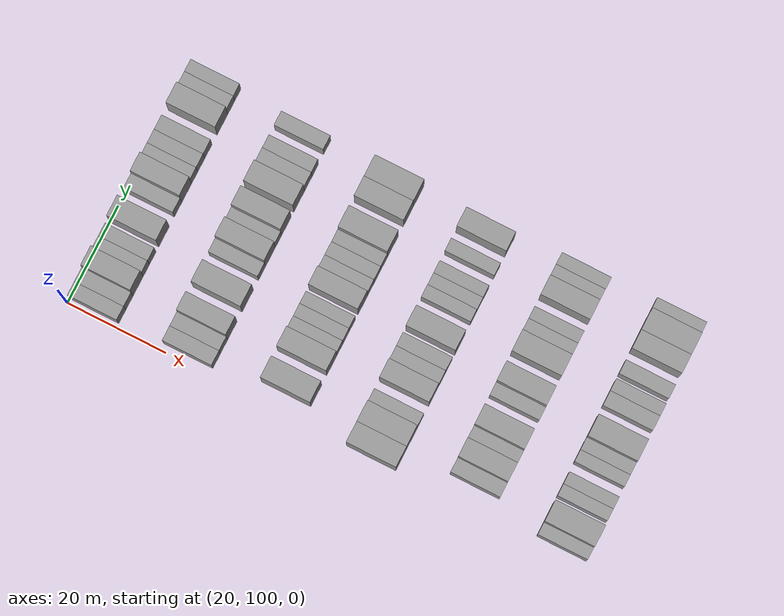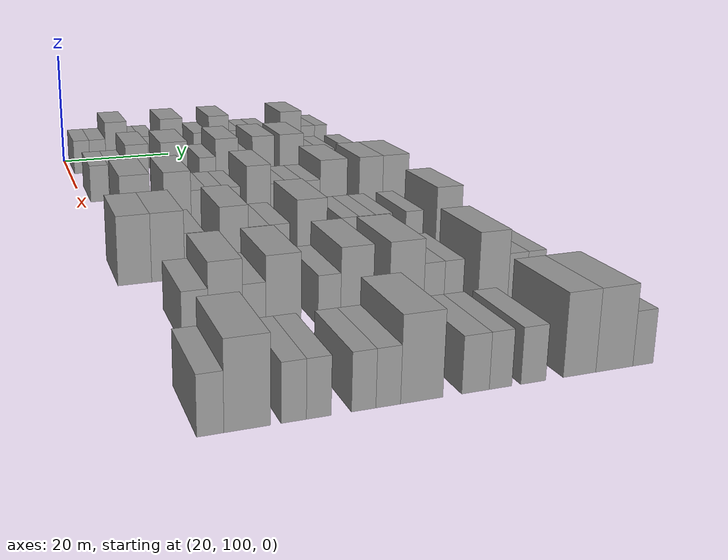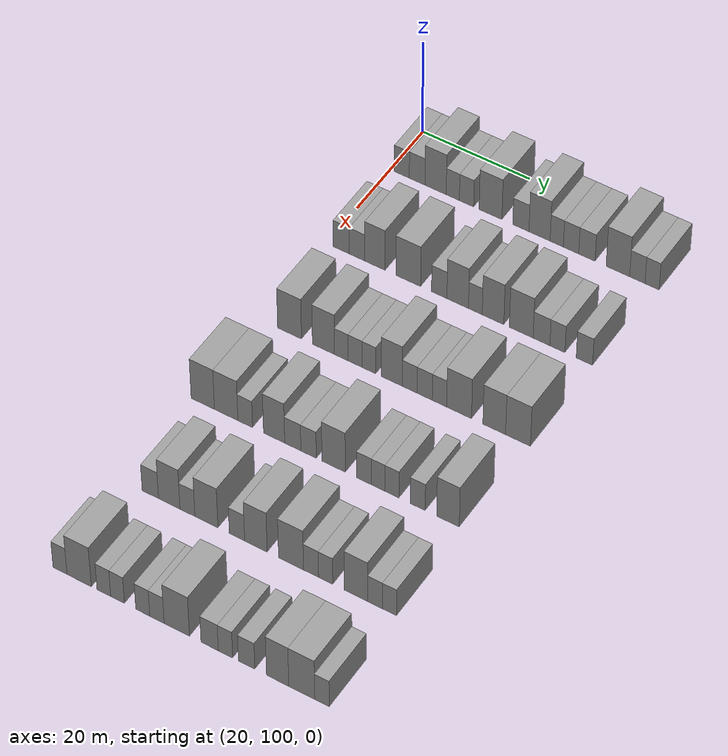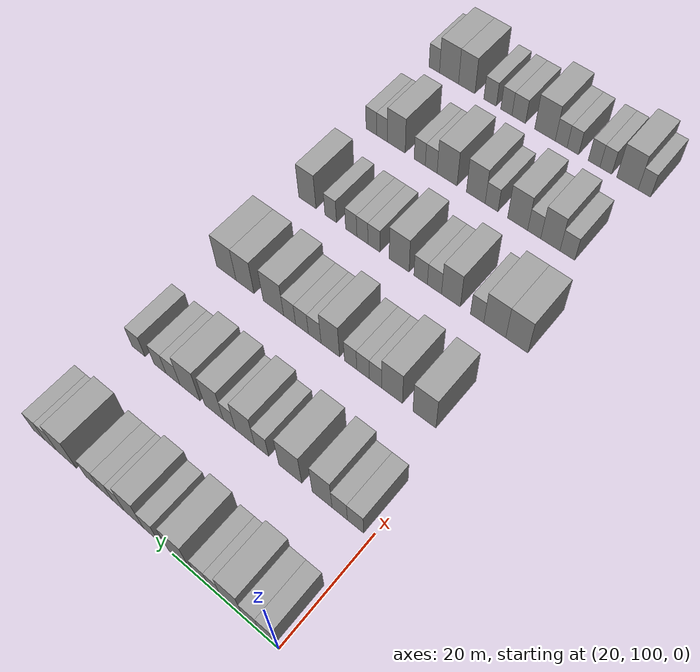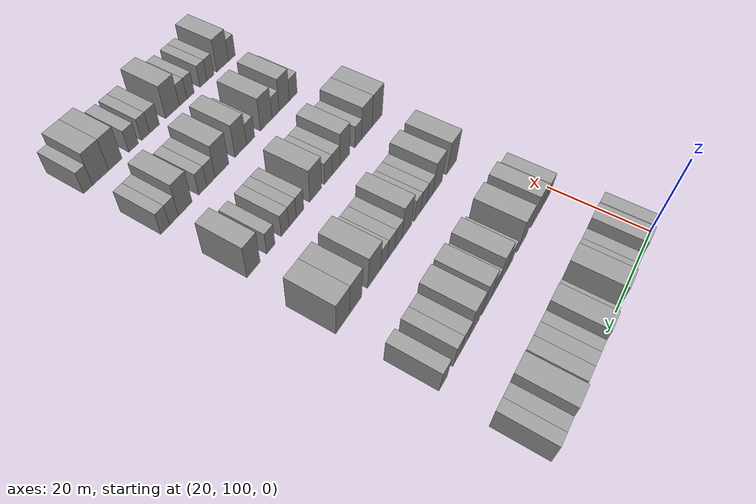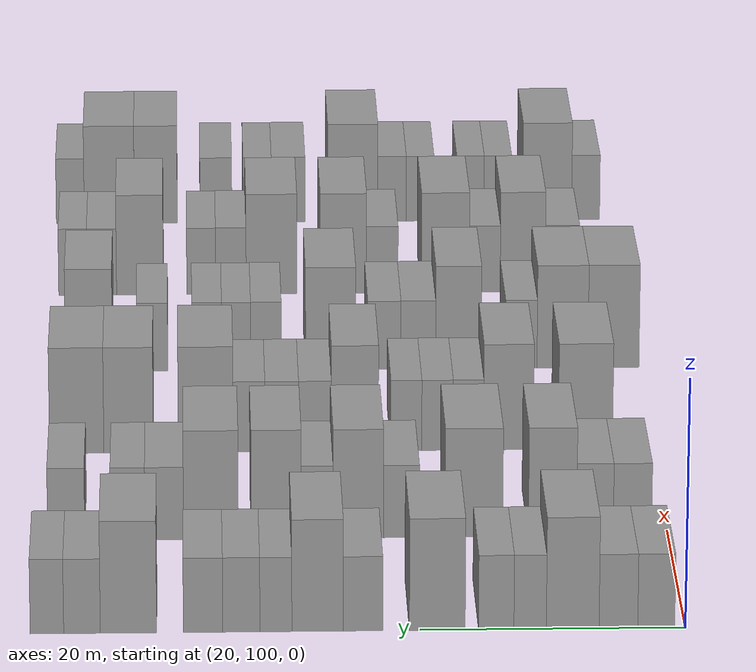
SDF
<sdf version="1.6">
 <world name="default">
  <model name="building_113">
   <static>1</static>
   <pose>25.0000 102.2338 0 0.000000 0.000000 0.000000</pose>
   <link name="link">
    <pose>0 0 3.00 0 0 0</pose>
    <collision name="collision"><geometry><box><size>10.0000 2.7815 6.0000</size></box></geometry></collision>
    <visual name="visual">
     <cast_shadows>0</cast_shadows>
     <geometry><box><size>10.0000 2.7815 6.0000</size></box></geometry>
     <material>
      <script>
       <uri>model://grey_wall/materials/scripts</uri>
       <uri>model://grey_wall/materials/textures</uri>
       <name>vrc/grey_wall</name>
      </script>
     </material>
    </visual>
   </link>
  </model>
  <model name="building_114">
   <static>1</static>
   <pose>25.0000 105.0807 0 0.000000 0.000000 0.000000</pose>
   <link name="link">
    <pose>0 0 3.00 0 0 0</pose>
    <collision name="collision"><geometry><box><size>10.0000 2.9123 6.0000</size></box></geometry></collision>
    <visual name="visual">
     <cast_shadows>0</cast_shadows>
     <geometry><box><size>10.0000 2.9123 6.0000</size></box></geometry>
     <material>
      <script>
       <uri>model://grey_wall/materials/scripts</uri>
       <uri>model://grey_wall/materials/textures</uri>
       <name>vrc/grey_wall</name>
      </script>
     </material>
    </visual>
   </link>
  </model>
  <model name="building_115">
   <static>1</static>
   <pose>25.0000 108.5226 0 0.000000 0.000000 0.000000</pose>
   <link name="link">
    <pose>0 0 4.50 0 0 0</pose>
    <collision name="collision"><geometry><box><size>10.0000 3.9714 9.0000</size></box></geometry></collision>
    <visual name="visual">
     <cast_shadows>0</cast_shadows>
     <geometry><box><size>10.0000 3.9714 9.0000</size></box></geometry>
     <material>
      <script>
       <uri>model://grey_wall/materials/scripts</uri>
       <uri>model://grey_wall/materials/textures</uri>
       <name>vrc/grey_wall</name>
      </script>
     </material>
    </visual>
   </link>
  </model>
  <model name="building_116">
   <static>1</static>
   <pose>25.0000 111.7250 0 0.000000 0.000000 0.000000</pose>
   <link name="link">
    <pose>0 0 3.00 0 0 0</pose>
    <collision name="collision"><geometry><box><size>10.0000 2.4335 6.0000</size></box></geometry></collision>
    <visual name="visual">
     <cast_shadows>0</cast_shadows>
     <geometry><box><size>10.0000 2.4335 6.0000</size></box></geometry>
     <material>
      <script>
       <uri>model://grey_wall/materials/scripts</uri>
       <uri>model://grey_wall/materials/textures</uri>
       <name>vrc/grey_wall</name>
      </script>
     </material>
    </visual>
   </link>
  </model>
  <model name="building_117">
   <static>1</static>
   <pose>25.0000 114.2732 0 0.000000 0.000000 0.000000</pose>
   <link name="link">
    <pose>0 0 3.00 0 0 0</pose>
    <collision name="collision"><geometry><box><size>10.0000 2.6630 6.0000</size></box></geometry></collision>
    <visual name="visual">
     <cast_shadows>0</cast_shadows>
     <geometry><box><size>10.0000 2.6630 6.0000</size></box></geometry>
     <material>
      <script>
       <uri>model://grey_wall/materials/scripts</uri>
       <uri>model://grey_wall/materials/textures</uri>
       <name>vrc/grey_wall</name>
      </script>
     </material>
    </visual>
   </link>
  </model>
  <model name="building_118">
   <static>1</static>
   <pose>25.0000 118.7036 0 0.000000 0.000000 0.000000</pose>
   <link name="link">
    <pose>0 0 4.50 0 0 0</pose>
    <collision name="collision"><geometry><box><size>10.0000 4.1977 9.0000</size></box></geometry></collision>
    <visual name="visual">
     <cast_shadows>0</cast_shadows>
     <geometry><box><size>10.0000 4.1977 9.0000</size></box></geometry>
     <material>
      <script>
       <uri>model://grey_wall/materials/scripts</uri>
       <uri>model://grey_wall/materials/textures</uri>
       <name>vrc/grey_wall</name>
      </script>
     </material>
    </visual>
   </link>
  </model>
  <model name="building_119">
   <static>1</static>
   <pose>25.0000 124.2835 0 0.000000 0.000000 0.000000</pose>
   <link name="link">
    <pose>0 0 3.00 0 0 0</pose>
    <collision name="collision"><geometry><box><size>10.0000 2.9621 6.0000</size></box></geometry></collision>
    <visual name="visual">
     <cast_shadows>0</cast_shadows>
     <geometry><box><size>10.0000 2.9621 6.0000</size></box></geometry>
     <material>
      <script>
       <uri>model://grey_wall/materials/scripts</uri>
       <uri>model://grey_wall/materials/textures</uri>
       <name>vrc/grey_wall</name>
      </script>
     </material>
    </visual>
   </link>
  </model>
  <model name="building_120">
   <static>1</static>
   <pose>25.0000 127.6969 0 0.000000 0.000000 0.000000</pose>
   <link name="link">
    <pose>0 0 4.50 0 0 0</pose>
    <collision name="collision"><geometry><box><size>10.0000 3.8647 9.0000</size></box></geometry></collision>
    <visual name="visual">
     <cast_shadows>0</cast_shadows>
     <geometry><box><size>10.0000 3.8647 9.0000</size></box></geometry>
     <material>
      <script>
       <uri>model://grey_wall/materials/scripts</uri>
       <uri>model://grey_wall/materials/textures</uri>
       <name>vrc/grey_wall</name>
      </script>
     </material>
    </visual>
   </link>
  </model>
  <model name="building_121">
   <static>1</static>
   <pose>25.0000 130.8299 0 0.000000 0.000000 0.000000</pose>
   <link name="link">
    <pose>0 0 3.00 0 0 0</pose>
    <collision name="collision"><geometry><box><size>10.0000 2.4013 6.0000</size></box></geometry></collision>
    <visual name="visual">
     <cast_shadows>0</cast_shadows>
     <geometry><box><size>10.0000 2.4013 6.0000</size></box></geometry>
     <material>
      <script>
       <uri>model://grey_wall/materials/scripts</uri>
       <uri>model://grey_wall/materials/textures</uri>
       <name>vrc/grey_wall</name>
      </script>
     </material>
    </visual>
   </link>
  </model>
  <model name="building_122">
   <static>1</static>
   <pose>25.0000 133.4220 0 0.000000 0.000000 0.000000</pose>
   <link name="link">
    <pose>0 0 3.00 0 0 0</pose>
    <collision name="collision"><geometry><box><size>10.0000 2.7829 6.0000</size></box></geometry></collision>
    <visual name="visual">
     <cast_shadows>0</cast_shadows>
     <geometry><box><size>10.0000 2.7829 6.0000</size></box></geometry>
     <material>
      <script>
       <uri>model://grey_wall/materials/scripts</uri>
       <uri>model://grey_wall/materials/textures</uri>
       <name>vrc/grey_wall</name>
      </script>
     </material>
    </visual>
   </link>
  </model>
  <model name="building_123">
   <static>1</static>
   <pose>25.0000 136.2915 0 0.000000 0.000000 0.000000</pose>
   <link name="link">
    <pose>0 0 3.00 0 0 0</pose>
    <collision name="collision"><geometry><box><size>10.0000 2.9561 6.0000</size></box></geometry></collision>
    <visual name="visual">
     <cast_shadows>0</cast_shadows>
     <geometry><box><size>10.0000 2.9561 6.0000</size></box></geometry>
     <material>
      <script>
       <uri>model://grey_wall/materials/scripts</uri>
       <uri>model://grey_wall/materials/textures</uri>
       <name>vrc/grey_wall</name>
      </script>
     </material>
    </visual>
   </link>
  </model>
  <model name="building_124">
   <static>1</static>
   <pose>25.0000 141.8852 0 0.000000 0.000000 0.000000</pose>
   <link name="link">
    <pose>0 0 4.50 0 0 0</pose>
    <collision name="collision"><geometry><box><size>10.0000 4.2313 9.0000</size></box></geometry></collision>
    <visual name="visual">
     <cast_shadows>0</cast_shadows>
     <geometry><box><size>10.0000 4.2313 9.0000</size></box></geometry>
     <material>
      <script>
       <uri>model://grey_wall/materials/scripts</uri>
       <uri>model://grey_wall/materials/textures</uri>
       <name>vrc/grey_wall</name>
      </script>
     </material>
    </visual>
   </link>
  </model>
  <model name="building_125">
   <static>1</static>
   <pose>25.0000 145.3755 0 0.000000 0.000000 0.000000</pose>
   <link name="link">
    <pose>0 0 3.00 0 0 0</pose>
    <collision name="collision"><geometry><box><size>10.0000 2.7493 6.0000</size></box></geometry></collision>
    <visual name="visual">
     <cast_shadows>0</cast_shadows>
     <geometry><box><size>10.0000 2.7493 6.0000</size></box></geometry>
     <material>
      <script>
       <uri>model://grey_wall/materials/scripts</uri>
       <uri>model://grey_wall/materials/textures</uri>
       <name>vrc/grey_wall</name>
      </script>
     </material>
    </visual>
   </link>
  </model>
  <model name="building_126">
   <static>1</static>
   <pose>25.0000 148.0064 0 0.000000 0.000000 0.000000</pose>
   <link name="link">
    <pose>0 0 3.00 0 0 0</pose>
    <collision name="collision"><geometry><box><size>10.0000 2.5124 6.0000</size></box></geometry></collision>
    <visual name="visual">
     <cast_shadows>0</cast_shadows>
     <geometry><box><size>10.0000 2.5124 6.0000</size></box></geometry>
     <material>
      <script>
       <uri>model://grey_wall/materials/scripts</uri>
       <uri>model://grey_wall/materials/textures</uri>
       <name>vrc/grey_wall</name>
      </script>
     </material>
    </visual>
   </link>
  </model>
  <model name="building_283">
   <static>1</static>
   <pose>44.0000 102.8122 0 0.000000 0.000000 0.000000</pose>
   <link name="link">
    <pose>0 0 3.00 0 0 0</pose>
    <collision name="collision"><geometry><box><size>10.0000 2.9869 6.0000</size></box></geometry></collision>
    <visual name="visual">
     <cast_shadows>0</cast_shadows>
     <geometry><box><size>10.0000 2.9869 6.0000</size></box></geometry>
     <material>
      <script>
       <uri>model://grey_wall/materials/scripts</uri>
       <uri>model://grey_wall/materials/textures</uri>
       <name>vrc/grey_wall</name>
      </script>
     </material>
    </visual>
   </link>
  </model>
  <model name="building_284">
   <static>1</static>
   <pose>44.0000 105.7350 0 0.000000 0.000000 0.000000</pose>
   <link name="link">
    <pose>0 0 3.00 0 0 0</pose>
    <collision name="collision"><geometry><box><size>10.0000 2.8587 6.0000</size></box></geometry></collision>
    <visual name="visual">
     <cast_shadows>0</cast_shadows>
     <geometry><box><size>10.0000 2.8587 6.0000</size></box></geometry>
     <material>
      <script>
       <uri>model://grey_wall/materials/scripts</uri>
       <uri>model://grey_wall/materials/textures</uri>
       <name>vrc/grey_wall</name>
      </script>
     </material>
    </visual>
   </link>
  </model>
  <model name="building_285">
   <static>1</static>
   <pose>44.0000 109.0394 0 0.000000 0.000000 0.000000</pose>
   <link name="link">
    <pose>0 0 4.50 0 0 0</pose>
    <collision name="collision"><geometry><box><size>10.0000 3.7499 9.0000</size></box></geometry></collision>
    <visual name="visual">
     <cast_shadows>0</cast_shadows>
     <geometry><box><size>10.0000 3.7499 9.0000</size></box></geometry>
     <material>
      <script>
       <uri>model://grey_wall/materials/scripts</uri>
       <uri>model://grey_wall/materials/textures</uri>
       <name>vrc/grey_wall</name>
      </script>
     </material>
    </visual>
   </link>
  </model>
  <model name="building_286">
   <static>1</static>
   <pose>44.0000 115.1559 0 0.000000 0.000000 0.000000</pose>
   <link name="link">
    <pose>0 0 4.50 0 0 0</pose>
    <collision name="collision"><geometry><box><size>10.0000 4.4832 9.0000</size></box></geometry></collision>
    <visual name="visual">
     <cast_shadows>0</cast_shadows>
     <geometry><box><size>10.0000 4.4832 9.0000</size></box></geometry>
     <material>
      <script>
       <uri>model://grey_wall/materials/scripts</uri>
       <uri>model://grey_wall/materials/textures</uri>
       <name>vrc/grey_wall</name>
      </script>
     </material>
    </visual>
   </link>
  </model>
  <model name="building_287">
   <static>1</static>
   <pose>44.0000 120.7952 0 0.000000 0.000000 0.000000</pose>
   <link name="link">
    <pose>0 0 3.00 0 0 0</pose>
    <collision name="collision"><geometry><box><size>10.0000 2.7954 6.0000</size></box></geometry></collision>
    <visual name="visual">
     <cast_shadows>0</cast_shadows>
     <geometry><box><size>10.0000 2.7954 6.0000</size></box></geometry>
     <material>
      <script>
       <uri>model://grey_wall/materials/scripts</uri>
       <uri>model://grey_wall/materials/textures</uri>
       <name>vrc/grey_wall</name>
      </script>
     </material>
    </visual>
   </link>
  </model>
  <model name="building_288">
   <static>1</static>
   <pose>44.0000 124.1482 0 0.000000 0.000000 0.000000</pose>
   <link name="link">
    <pose>0 0 4.50 0 0 0</pose>
    <collision name="collision"><geometry><box><size>10.0000 3.9106 9.0000</size></box></geometry></collision>
    <visual name="visual">
     <cast_shadows>0</cast_shadows>
     <geometry><box><size>10.0000 3.9106 9.0000</size></box></geometry>
     <material>
      <script>
       <uri>model://grey_wall/materials/scripts</uri>
       <uri>model://grey_wall/materials/textures</uri>
       <name>vrc/grey_wall</name>
      </script>
     </material>
    </visual>
   </link>
  </model>
  <model name="building_289">
   <static>1</static>
   <pose>44.0000 127.3404 0 0.000000 0.000000 0.000000</pose>
   <link name="link">
    <pose>0 0 3.00 0 0 0</pose>
    <collision name="collision"><geometry><box><size>10.0000 2.4738 6.0000</size></box></geometry></collision>
    <visual name="visual">
     <cast_shadows>0</cast_shadows>
     <geometry><box><size>10.0000 2.4738 6.0000</size></box></geometry>
     <material>
      <script>
       <uri>model://grey_wall/materials/scripts</uri>
       <uri>model://grey_wall/materials/textures</uri>
       <name>vrc/grey_wall</name>
      </script>
     </material>
    </visual>
   </link>
  </model>
  <model name="building_290">
   <static>1</static>
   <pose>44.0000 130.5202 0 0.000000 0.000000 0.000000</pose>
   <link name="link">
    <pose>0 0 4.50 0 0 0</pose>
    <collision name="collision"><geometry><box><size>10.0000 3.8858 9.0000</size></box></geometry></collision>
    <visual name="visual">
     <cast_shadows>0</cast_shadows>
     <geometry><box><size>10.0000 3.8858 9.0000</size></box></geometry>
     <material>
      <script>
       <uri>model://grey_wall/materials/scripts</uri>
       <uri>model://grey_wall/materials/textures</uri>
       <name>vrc/grey_wall</name>
      </script>
     </material>
    </visual>
   </link>
  </model>
  <model name="building_291">
   <static>1</static>
   <pose>44.0000 135.5930 0 0.000000 0.000000 0.000000</pose>
   <link name="link">
    <pose>0 0 4.50 0 0 0</pose>
    <collision name="collision"><geometry><box><size>10.0000 4.2598 9.0000</size></box></geometry></collision>
    <visual name="visual">
     <cast_shadows>0</cast_shadows>
     <geometry><box><size>10.0000 4.2598 9.0000</size></box></geometry>
     <material>
      <script>
       <uri>model://grey_wall/materials/scripts</uri>
       <uri>model://grey_wall/materials/textures</uri>
       <name>vrc/grey_wall</name>
      </script>
     </material>
    </visual>
   </link>
  </model>
  <model name="building_292">
   <static>1</static>
   <pose>44.0000 139.2191 0 0.000000 0.000000 0.000000</pose>
   <link name="link">
    <pose>0 0 3.00 0 0 0</pose>
    <collision name="collision"><geometry><box><size>10.0000 2.9923 6.0000</size></box></geometry></collision>
    <visual name="visual">
     <cast_shadows>0</cast_shadows>
     <geometry><box><size>10.0000 2.9923 6.0000</size></box></geometry>
     <material>
      <script>
       <uri>model://grey_wall/materials/scripts</uri>
       <uri>model://grey_wall/materials/textures</uri>
       <name>vrc/grey_wall</name>
      </script>
     </material>
    </visual>
   </link>
  </model>
  <model name="building_293">
   <static>1</static>
   <pose>44.0000 142.0519 0 0.000000 0.000000 0.000000</pose>
   <link name="link">
    <pose>0 0 3.00 0 0 0</pose>
    <collision name="collision"><geometry><box><size>10.0000 2.6733 6.0000</size></box></geometry></collision>
    <visual name="visual">
     <cast_shadows>0</cast_shadows>
     <geometry><box><size>10.0000 2.6733 6.0000</size></box></geometry>
     <material>
      <script>
       <uri>model://grey_wall/materials/scripts</uri>
       <uri>model://grey_wall/materials/textures</uri>
       <name>vrc/grey_wall</name>
      </script>
     </material>
    </visual>
   </link>
  </model>
  <model name="building_294">
   <static>1</static>
   <pose>44.0000 146.8311 0 0.000000 0.000000 0.000000</pose>
   <link name="link">
    <pose>0 0 3.00 0 0 0</pose>
    <collision name="collision"><geometry><box><size>10.0000 2.8851 6.0000</size></box></geometry></collision>
    <visual name="visual">
     <cast_shadows>0</cast_shadows>
     <geometry><box><size>10.0000 2.8851 6.0000</size></box></geometry>
     <material>
      <script>
       <uri>model://grey_wall/materials/scripts</uri>
       <uri>model://grey_wall/materials/textures</uri>
       <name>vrc/grey_wall</name>
      </script>
     </material>
    </visual>
   </link>
  </model>
  <model name="building_463">
   <static>1</static>
   <pose>63.0000 105.3827 0 0.000000 0.000000 0.000000</pose>
   <link name="link">
    <pose>0 0 4.50 0 0 0</pose>
    <collision name="collision"><geometry><box><size>10.0000 4.3598 9.0000</size></box></geometry></collision>
    <visual name="visual">
     <cast_shadows>0</cast_shadows>
     <geometry><box><size>10.0000 4.3598 9.0000</size></box></geometry>
     <material>
      <script>
       <uri>model://grey_wall/materials/scripts</uri>
       <uri>model://grey_wall/materials/textures</uri>
       <name>vrc/grey_wall</name>
      </script>
     </material>
    </visual>
   </link>
  </model>
  <model name="building_464">
   <static>1</static>
   <pose>63.0000 111.5710 0 0.000000 0.000000 0.000000</pose>
   <link name="link">
    <pose>0 0 4.50 0 0 0</pose>
    <collision name="collision"><geometry><box><size>10.0000 4.0169 9.0000</size></box></geometry></collision>
    <visual name="visual">
     <cast_shadows>0</cast_shadows>
     <geometry><box><size>10.0000 4.0169 9.0000</size></box></geometry>
     <material>
      <script>
       <uri>model://grey_wall/materials/scripts</uri>
       <uri>model://grey_wall/materials/textures</uri>
       <name>vrc/grey_wall</name>
      </script>
     </material>
    </visual>
   </link>
  </model>
  <model name="building_465">
   <static>1</static>
   <pose>63.0000 114.8075 0 0.000000 0.000000 0.000000</pose>
   <link name="link">
    <pose>0 0 3.00 0 0 0</pose>
    <collision name="collision"><geometry><box><size>10.0000 2.4559 6.0000</size></box></geometry></collision>
    <visual name="visual">
     <cast_shadows>0</cast_shadows>
     <geometry><box><size>10.0000 2.4559 6.0000</size></box></geometry>
     <material>
      <script>
       <uri>model://grey_wall/materials/scripts</uri>
       <uri>model://grey_wall/materials/textures</uri>
       <name>vrc/grey_wall</name>
      </script>
     </material>
    </visual>
   </link>
  </model>
  <model name="building_466">
   <static>1</static>
   <pose>63.0000 117.2953 0 0.000000 0.000000 0.000000</pose>
   <link name="link">
    <pose>0 0 3.00 0 0 0</pose>
    <collision name="collision"><geometry><box><size>10.0000 2.5198 6.0000</size></box></geometry></collision>
    <visual name="visual">
     <cast_shadows>0</cast_shadows>
     <geometry><box><size>10.0000 2.5198 6.0000</size></box></geometry>
     <material>
      <script>
       <uri>model://grey_wall/materials/scripts</uri>
       <uri>model://grey_wall/materials/textures</uri>
       <name>vrc/grey_wall</name>
      </script>
     </material>
    </visual>
   </link>
  </model>
  <model name="building_467">
   <static>1</static>
   <pose>63.0000 119.7960 0 0.000000 0.000000 0.000000</pose>
   <link name="link">
    <pose>0 0 3.00 0 0 0</pose>
    <collision name="collision"><geometry><box><size>10.0000 2.4814 6.0000</size></box></geometry></collision>
    <visual name="visual">
     <cast_shadows>0</cast_shadows>
     <geometry><box><size>10.0000 2.4814 6.0000</size></box></geometry>
     <material>
      <script>
       <uri>model://grey_wall/materials/scripts</uri>
       <uri>model://grey_wall/materials/textures</uri>
       <name>vrc/grey_wall</name>
      </script>
     </material>
    </visual>
   </link>
  </model>
  <model name="building_468">
   <static>1</static>
   <pose>63.0000 123.9250 0 0.000000 0.000000 0.000000</pose>
   <link name="link">
    <pose>0 0 4.50 0 0 0</pose>
    <collision name="collision"><geometry><box><size>10.0000 3.7767 9.0000</size></box></geometry></collision>
    <visual name="visual">
     <cast_shadows>0</cast_shadows>
     <geometry><box><size>10.0000 3.7767 9.0000</size></box></geometry>
     <material>
      <script>
       <uri>model://grey_wall/materials/scripts</uri>
       <uri>model://grey_wall/materials/textures</uri>
       <name>vrc/grey_wall</name>
      </script>
     </material>
    </visual>
   </link>
  </model>
  <model name="building_469">
   <static>1</static>
   <pose>63.0000 127.1298 0 0.000000 0.000000 0.000000</pose>
   <link name="link">
    <pose>0 0 3.00 0 0 0</pose>
    <collision name="collision"><geometry><box><size>10.0000 2.6327 6.0000</size></box></geometry></collision>
    <visual name="visual">
     <cast_shadows>0</cast_shadows>
     <geometry><box><size>10.0000 2.6327 6.0000</size></box></geometry>
     <material>
      <script>
       <uri>model://grey_wall/materials/scripts</uri>
       <uri>model://grey_wall/materials/textures</uri>
       <name>vrc/grey_wall</name>
      </script>
     </material>
    </visual>
   </link>
  </model>
  <model name="building_470">
   <static>1</static>
   <pose>63.0000 129.7962 0 0.000000 0.000000 0.000000</pose>
   <link name="link">
    <pose>0 0 3.00 0 0 0</pose>
    <collision name="collision"><geometry><box><size>10.0000 2.7000 6.0000</size></box></geometry></collision>
    <visual name="visual">
     <cast_shadows>0</cast_shadows>
     <geometry><box><size>10.0000 2.7000 6.0000</size></box></geometry>
     <material>
      <script>
       <uri>model://grey_wall/materials/scripts</uri>
       <uri>model://grey_wall/materials/textures</uri>
       <name>vrc/grey_wall</name>
      </script>
     </material>
    </visual>
   </link>
  </model>
  <model name="building_471">
   <static>1</static>
   <pose>63.0000 132.4241 0 0.000000 0.000000 0.000000</pose>
   <link name="link">
    <pose>0 0 3.00 0 0 0</pose>
    <collision name="collision"><geometry><box><size>10.0000 2.5558 6.0000</size></box></geometry></collision>
    <visual name="visual">
     <cast_shadows>0</cast_shadows>
     <geometry><box><size>10.0000 2.5558 6.0000</size></box></geometry>
     <material>
      <script>
       <uri>model://grey_wall/materials/scripts</uri>
       <uri>model://grey_wall/materials/textures</uri>
       <name>vrc/grey_wall</name>
      </script>
     </material>
    </visual>
   </link>
  </model>
  <model name="building_472">
   <static>1</static>
   <pose>63.0000 135.9044 0 0.000000 0.000000 0.000000</pose>
   <link name="link">
    <pose>0 0 4.50 0 0 0</pose>
    <collision name="collision"><geometry><box><size>10.0000 4.4050 9.0000</size></box></geometry></collision>
    <visual name="visual">
     <cast_shadows>0</cast_shadows>
     <geometry><box><size>10.0000 4.4050 9.0000</size></box></geometry>
     <material>
      <script>
       <uri>model://grey_wall/materials/scripts</uri>
       <uri>model://grey_wall/materials/textures</uri>
       <name>vrc/grey_wall</name>
      </script>
     </material>
    </visual>
   </link>
  </model>
  <model name="building_473">
   <static>1</static>
   <pose>63.0000 142.0985 0 0.000000 0.000000 0.000000</pose>
   <link name="link">
    <pose>0 0 4.50 0 0 0</pose>
    <collision name="collision"><geometry><box><size>10.0000 3.9832 9.0000</size></box></geometry></collision>
    <visual name="visual">
     <cast_shadows>0</cast_shadows>
     <geometry><box><size>10.0000 3.9832 9.0000</size></box></geometry>
     <material>
      <script>
       <uri>model://grey_wall/materials/scripts</uri>
       <uri>model://grey_wall/materials/textures</uri>
       <name>vrc/grey_wall</name>
      </script>
     </material>
    </visual>
   </link>
  </model>
  <model name="building_474">
   <static>1</static>
   <pose>63.0000 146.2681 0 0.000000 0.000000 0.000000</pose>
   <link name="link">
    <pose>0 0 4.50 0 0 0</pose>
    <collision name="collision"><geometry><box><size>10.0000 4.3560 9.0000</size></box></geometry></collision>
    <visual name="visual">
     <cast_shadows>0</cast_shadows>
     <geometry><box><size>10.0000 4.3560 9.0000</size></box></geometry>
     <material>
      <script>
       <uri>model://grey_wall/materials/scripts</uri>
       <uri>model://grey_wall/materials/textures</uri>
       <name>vrc/grey_wall</name>
      </script>
     </material>
    </visual>
   </link>
  </model>
  <model name="building_623">
   <static>1</static>
   <pose>82.0000 101.9577 0 0.000000 0.000000 0.000000</pose>
   <link name="link">
    <pose>0 0 4.50 0 0 0</pose>
    <collision name="collision"><geometry><box><size>10.0000 4.2359 9.0000</size></box></geometry></collision>
    <visual name="visual">
     <cast_shadows>0</cast_shadows>
     <geometry><box><size>10.0000 4.2359 9.0000</size></box></geometry>
     <material>
      <script>
       <uri>model://grey_wall/materials/scripts</uri>
       <uri>model://grey_wall/materials/textures</uri>
       <name>vrc/grey_wall</name>
      </script>
     </material>
    </visual>
   </link>
  </model>
  <model name="building_624">
   <static>1</static>
   <pose>82.0000 106.1976 0 0.000000 0.000000 0.000000</pose>
   <link name="link">
    <pose>0 0 4.50 0 0 0</pose>
    <collision name="collision"><geometry><box><size>10.0000 4.2441 9.0000</size></box></geometry></collision>
    <visual name="visual">
     <cast_shadows>0</cast_shadows>
     <geometry><box><size>10.0000 4.2441 9.0000</size></box></geometry>
     <material>
      <script>
       <uri>model://grey_wall/materials/scripts</uri>
       <uri>model://grey_wall/materials/textures</uri>
       <name>vrc/grey_wall</name>
      </script>
     </material>
    </visual>
   </link>
  </model>
  <model name="building_625">
   <static>1</static>
   <pose>82.0000 109.6351 0 0.000000 0.000000 0.000000</pose>
   <link name="link">
    <pose>0 0 3.00 0 0 0</pose>
    <collision name="collision"><geometry><box><size>10.0000 2.6308 6.0000</size></box></geometry></collision>
    <visual name="visual">
     <cast_shadows>0</cast_shadows>
     <geometry><box><size>10.0000 2.6308 6.0000</size></box></geometry>
     <material>
      <script>
       <uri>model://grey_wall/materials/scripts</uri>
       <uri>model://grey_wall/materials/textures</uri>
       <name>vrc/grey_wall</name>
      </script>
     </material>
    </visual>
   </link>
  </model>
  <model name="building_626">
   <static>1</static>
   <pose>82.0000 114.8485 0 0.000000 0.000000 0.000000</pose>
   <link name="link">
    <pose>0 0 4.50 0 0 0</pose>
    <collision name="collision"><geometry><box><size>10.0000 3.7960 9.0000</size></box></geometry></collision>
    <visual name="visual">
     <cast_shadows>0</cast_shadows>
     <geometry><box><size>10.0000 3.7960 9.0000</size></box></geometry>
     <material>
      <script>
       <uri>model://grey_wall/materials/scripts</uri>
       <uri>model://grey_wall/materials/textures</uri>
       <name>vrc/grey_wall</name>
      </script>
     </material>
    </visual>
   </link>
  </model>
  <model name="building_627">
   <static>1</static>
   <pose>82.0000 118.1863 0 0.000000 0.000000 0.000000</pose>
   <link name="link">
    <pose>0 0 3.00 0 0 0</pose>
    <collision name="collision"><geometry><box><size>10.0000 2.8795 6.0000</size></box></geometry></collision>
    <visual name="visual">
     <cast_shadows>0</cast_shadows>
     <geometry><box><size>10.0000 2.8795 6.0000</size></box></geometry>
     <material>
      <script>
       <uri>model://grey_wall/materials/scripts</uri>
       <uri>model://grey_wall/materials/textures</uri>
       <name>vrc/grey_wall</name>
      </script>
     </material>
    </visual>
   </link>
  </model>
  <model name="building_628">
   <static>1</static>
   <pose>82.0000 121.0032 0 0.000000 0.000000 0.000000</pose>
   <link name="link">
    <pose>0 0 3.00 0 0 0</pose>
    <collision name="collision"><geometry><box><size>10.0000 2.7544 6.0000</size></box></geometry></collision>
    <visual name="visual">
     <cast_shadows>0</cast_shadows>
     <geometry><box><size>10.0000 2.7544 6.0000</size></box></geometry>
     <material>
      <script>
       <uri>model://grey_wall/materials/scripts</uri>
       <uri>model://grey_wall/materials/textures</uri>
       <name>vrc/grey_wall</name>
      </script>
     </material>
    </visual>
   </link>
  </model>
  <model name="building_629">
   <static>1</static>
   <pose>82.0000 125.4611 0 0.000000 0.000000 0.000000</pose>
   <link name="link">
    <pose>0 0 4.50 0 0 0</pose>
    <collision name="collision"><geometry><box><size>10.0000 4.1613 9.0000</size></box></geometry></collision>
    <visual name="visual">
     <cast_shadows>0</cast_shadows>
     <geometry><box><size>10.0000 4.1613 9.0000</size></box></geometry>
     <material>
      <script>
       <uri>model://grey_wall/materials/scripts</uri>
       <uri>model://grey_wall/materials/textures</uri>
       <name>vrc/grey_wall</name>
      </script>
     </material>
    </visual>
   </link>
  </model>
  <model name="building_630">
   <static>1</static>
   <pose>82.0000 130.8156 0 0.000000 0.000000 0.000000</pose>
   <link name="link">
    <pose>0 0 3.00 0 0 0</pose>
    <collision name="collision"><geometry><box><size>10.0000 2.5477 6.0000</size></box></geometry></collision>
    <visual name="visual">
     <cast_shadows>0</cast_shadows>
     <geometry><box><size>10.0000 2.5477 6.0000</size></box></geometry>
     <material>
      <script>
       <uri>model://grey_wall/materials/scripts</uri>
       <uri>model://grey_wall/materials/textures</uri>
       <name>vrc/grey_wall</name>
      </script>
     </material>
    </visual>
   </link>
  </model>
  <model name="building_631">
   <static>1</static>
   <pose>82.0000 133.2927 0 0.000000 0.000000 0.000000</pose>
   <link name="link">
    <pose>0 0 3.00 0 0 0</pose>
    <collision name="collision"><geometry><box><size>10.0000 2.4065 6.0000</size></box></geometry></collision>
    <visual name="visual">
     <cast_shadows>0</cast_shadows>
     <geometry><box><size>10.0000 2.4065 6.0000</size></box></geometry>
     <material>
      <script>
       <uri>model://grey_wall/materials/scripts</uri>
       <uri>model://grey_wall/materials/textures</uri>
       <name>vrc/grey_wall</name>
      </script>
     </material>
    </visual>
   </link>
  </model>
  <model name="building_632">
   <static>1</static>
   <pose>82.0000 135.7270 0 0.000000 0.000000 0.000000</pose>
   <link name="link">
    <pose>0 0 3.00 0 0 0</pose>
    <collision name="collision"><geometry><box><size>10.0000 2.4622 6.0000</size></box></geometry></collision>
    <visual name="visual">
     <cast_shadows>0</cast_shadows>
     <geometry><box><size>10.0000 2.4622 6.0000</size></box></geometry>
     <material>
      <script>
       <uri>model://grey_wall/materials/scripts</uri>
       <uri>model://grey_wall/materials/textures</uri>
       <name>vrc/grey_wall</name>
      </script>
     </material>
    </visual>
   </link>
  </model>
  <model name="building_633">
   <static>1</static>
   <pose>82.0000 140.2498 0 0.000000 0.000000 0.000000</pose>
   <link name="link">
    <pose>0 0 3.00 0 0 0</pose>
    <collision name="collision"><geometry><box><size>10.0000 2.5834 6.0000</size></box></geometry></collision>
    <visual name="visual">
     <cast_shadows>0</cast_shadows>
     <geometry><box><size>10.0000 2.5834 6.0000</size></box></geometry>
     <material>
      <script>
       <uri>model://grey_wall/materials/scripts</uri>
       <uri>model://grey_wall/materials/textures</uri>
       <name>vrc/grey_wall</name>
      </script>
     </material>
    </visual>
   </link>
  </model>
  <model name="building_634">
   <static>1</static>
   <pose>82.0000 145.4933 0 0.000000 0.000000 0.000000</pose>
   <link name="link">
    <pose>0 0 4.50 0 0 0</pose>
    <collision name="collision"><geometry><box><size>10.0000 3.9036 9.0000</size></box></geometry></collision>
    <visual name="visual">
     <cast_shadows>0</cast_shadows>
     <geometry><box><size>10.0000 3.9036 9.0000</size></box></geometry>
     <material>
      <script>
       <uri>model://grey_wall/materials/scripts</uri>
       <uri>model://grey_wall/materials/textures</uri>
       <name>vrc/grey_wall</name>
      </script>
     </material>
    </visual>
   </link>
  </model>
  <model name="building_806">
   <static>1</static>
   <pose>101.0000 105.2041 0 0.000000 0.000000 0.000000</pose>
   <link name="link">
    <pose>0 0 3.00 0 0 0</pose>
    <collision name="collision"><geometry><box><size>10.0000 2.9330 6.0000</size></box></geometry></collision>
    <visual name="visual">
     <cast_shadows>0</cast_shadows>
     <geometry><box><size>10.0000 2.9330 6.0000</size></box></geometry>
     <material>
      <script>
       <uri>model://grey_wall/materials/scripts</uri>
       <uri>model://grey_wall/materials/textures</uri>
       <name>vrc/grey_wall</name>
      </script>
     </material>
    </visual>
   </link>
  </model>
  <model name="building_807">
   <static>1</static>
   <pose>101.0000 108.5928 0 0.000000 0.000000 0.000000</pose>
   <link name="link">
    <pose>0 0 4.50 0 0 0</pose>
    <collision name="collision"><geometry><box><size>10.0000 3.8444 9.0000</size></box></geometry></collision>
    <visual name="visual">
     <cast_shadows>0</cast_shadows>
     <geometry><box><size>10.0000 3.8444 9.0000</size></box></geometry>
     <material>
      <script>
       <uri>model://grey_wall/materials/scripts</uri>
       <uri>model://grey_wall/materials/textures</uri>
       <name>vrc/grey_wall</name>
      </script>
     </material>
    </visual>
   </link>
  </model>
  <model name="building_808">
   <static>1</static>
   <pose>101.0000 111.8437 0 0.000000 0.000000 0.000000</pose>
   <link name="link">
    <pose>0 0 3.00 0 0 0</pose>
    <collision name="collision"><geometry><box><size>10.0000 2.6576 6.0000</size></box></geometry></collision>
    <visual name="visual">
     <cast_shadows>0</cast_shadows>
     <geometry><box><size>10.0000 2.6576 6.0000</size></box></geometry>
     <material>
      <script>
       <uri>model://grey_wall/materials/scripts</uri>
       <uri>model://grey_wall/materials/textures</uri>
       <name>vrc/grey_wall</name>
      </script>
     </material>
    </visual>
   </link>
  </model>
  <model name="building_809">
   <static>1</static>
   <pose>101.0000 115.2193 0 0.000000 0.000000 0.000000</pose>
   <link name="link">
    <pose>0 0 4.50 0 0 0</pose>
    <collision name="collision"><geometry><box><size>10.0000 4.0935 9.0000</size></box></geometry></collision>
    <visual name="visual">
     <cast_shadows>0</cast_shadows>
     <geometry><box><size>10.0000 4.0935 9.0000</size></box></geometry>
     <material>
      <script>
       <uri>model://grey_wall/materials/scripts</uri>
       <uri>model://grey_wall/materials/textures</uri>
       <name>vrc/grey_wall</name>
      </script>
     </material>
    </visual>
   </link>
  </model>
  <model name="building_810">
   <static>1</static>
   <pose>101.0000 120.6168 0 0.000000 0.000000 0.000000</pose>
   <link name="link">
    <pose>0 0 3.00 0 0 0</pose>
    <collision name="collision"><geometry><box><size>10.0000 2.7015 6.0000</size></box></geometry></collision>
    <visual name="visual">
     <cast_shadows>0</cast_shadows>
     <geometry><box><size>10.0000 2.7015 6.0000</size></box></geometry>
     <material>
      <script>
       <uri>model://grey_wall/materials/scripts</uri>
       <uri>model://grey_wall/materials/textures</uri>
       <name>vrc/grey_wall</name>
      </script>
     </material>
    </visual>
   </link>
  </model>
  <model name="building_811">
   <static>1</static>
   <pose>101.0000 123.9475 0 0.000000 0.000000 0.000000</pose>
   <link name="link">
    <pose>0 0 4.50 0 0 0</pose>
    <collision name="collision"><geometry><box><size>10.0000 3.9598 9.0000</size></box></geometry></collision>
    <visual name="visual">
     <cast_shadows>0</cast_shadows>
     <geometry><box><size>10.0000 3.9598 9.0000</size></box></geometry>
     <material>
      <script>
       <uri>model://grey_wall/materials/scripts</uri>
       <uri>model://grey_wall/materials/textures</uri>
       <name>vrc/grey_wall</name>
      </script>
     </material>
    </visual>
   </link>
  </model>
  <model name="building_812">
   <static>1</static>
   <pose>101.0000 130.1002 0 0.000000 0.000000 0.000000</pose>
   <link name="link">
    <pose>0 0 4.50 0 0 0</pose>
    <collision name="collision"><geometry><box><size>10.0000 4.3456 9.0000</size></box></geometry></collision>
    <visual name="visual">
     <cast_shadows>0</cast_shadows>
     <geometry><box><size>10.0000 4.3456 9.0000</size></box></geometry>
     <material>
      <script>
       <uri>model://grey_wall/materials/scripts</uri>
       <uri>model://grey_wall/materials/textures</uri>
       <name>vrc/grey_wall</name>
      </script>
     </material>
    </visual>
   </link>
  </model>
  <model name="building_813">
   <static>1</static>
   <pose>101.0000 133.5763 0 0.000000 0.000000 0.000000</pose>
   <link name="link">
    <pose>0 0 3.00 0 0 0</pose>
    <collision name="collision"><geometry><box><size>10.0000 2.6065 6.0000</size></box></geometry></collision>
    <visual name="visual">
     <cast_shadows>0</cast_shadows>
     <geometry><box><size>10.0000 2.6065 6.0000</size></box></geometry>
     <material>
      <script>
       <uri>model://grey_wall/materials/scripts</uri>
       <uri>model://grey_wall/materials/textures</uri>
       <name>vrc/grey_wall</name>
      </script>
     </material>
    </visual>
   </link>
  </model>
  <model name="building_814">
   <static>1</static>
   <pose>101.0000 136.1153 0 0.000000 0.000000 0.000000</pose>
   <link name="link">
    <pose>0 0 3.00 0 0 0</pose>
    <collision name="collision"><geometry><box><size>10.0000 2.4715 6.0000</size></box></geometry></collision>
    <visual name="visual">
     <cast_shadows>0</cast_shadows>
     <geometry><box><size>10.0000 2.4715 6.0000</size></box></geometry>
     <material>
      <script>
       <uri>model://grey_wall/materials/scripts</uri>
       <uri>model://grey_wall/materials/textures</uri>
       <name>vrc/grey_wall</name>
      </script>
     </material>
    </visual>
   </link>
  </model>
  <model name="building_815">
   <static>1</static>
   <pose>101.0000 141.3577 0 0.000000 0.000000 0.000000</pose>
   <link name="link">
    <pose>0 0 4.50 0 0 0</pose>
    <collision name="collision"><geometry><box><size>10.0000 4.0133 9.0000</size></box></geometry></collision>
    <visual name="visual">
     <cast_shadows>0</cast_shadows>
     <geometry><box><size>10.0000 4.0133 9.0000</size></box></geometry>
     <material>
      <script>
       <uri>model://grey_wall/materials/scripts</uri>
       <uri>model://grey_wall/materials/textures</uri>
       <name>vrc/grey_wall</name>
      </script>
     </material>
    </visual>
   </link>
  </model>
  <model name="building_816">
   <static>1</static>
   <pose>101.0000 144.6255 0 0.000000 0.000000 0.000000</pose>
   <link name="link">
    <pose>0 0 3.00 0 0 0</pose>
    <collision name="collision"><geometry><box><size>10.0000 2.5224 6.0000</size></box></geometry></collision>
    <visual name="visual">
     <cast_shadows>0</cast_shadows>
     <geometry><box><size>10.0000 2.5224 6.0000</size></box></geometry>
     <material>
      <script>
       <uri>model://grey_wall/materials/scripts</uri>
       <uri>model://grey_wall/materials/textures</uri>
       <name>vrc/grey_wall</name>
      </script>
     </material>
    </visual>
   </link>
  </model>
  <model name="building_817">
   <static>1</static>
   <pose>101.0000 147.0962 0 0.000000 0.000000 0.000000</pose>
   <link name="link">
    <pose>0 0 3.00 0 0 0</pose>
    <collision name="collision"><geometry><box><size>10.0000 2.4191 6.0000</size></box></geometry></collision>
    <visual name="visual">
     <cast_shadows>0</cast_shadows>
     <geometry><box><size>10.0000 2.4191 6.0000</size></box></geometry>
     <material>
      <script>
       <uri>model://grey_wall/materials/scripts</uri>
       <uri>model://grey_wall/materials/textures</uri>
       <name>vrc/grey_wall</name>
      </script>
     </material>
    </visual>
   </link>
  </model>
  <model name="building_978">
   <static>1</static>
   <pose>120.0000 102.0977 0 0.000000 0.000000 0.000000</pose>
   <link name="link">
    <pose>0 0 3.00 0 0 0</pose>
    <collision name="collision"><geometry><box><size>10.0000 2.4777 6.0000</size></box></geometry></collision>
    <visual name="visual">
     <cast_shadows>0</cast_shadows>
     <geometry><box><size>10.0000 2.4777 6.0000</size></box></geometry>
     <material>
      <script>
       <uri>model://grey_wall/materials/scripts</uri>
       <uri>model://grey_wall/materials/textures</uri>
       <name>vrc/grey_wall</name>
      </script>
     </material>
    </visual>
   </link>
  </model>
  <model name="building_979">
   <static>1</static>
   <pose>120.0000 105.4991 0 0.000000 0.000000 0.000000</pose>
   <link name="link">
    <pose>0 0 4.50 0 0 0</pose>
    <collision name="collision"><geometry><box><size>10.0000 4.3252 9.0000</size></box></geometry></collision>
    <visual name="visual">
     <cast_shadows>0</cast_shadows>
     <geometry><box><size>10.0000 4.3252 9.0000</size></box></geometry>
     <material>
      <script>
       <uri>model://grey_wall/materials/scripts</uri>
       <uri>model://grey_wall/materials/textures</uri>
       <name>vrc/grey_wall</name>
      </script>
     </material>
    </visual>
   </link>
  </model>
  <model name="building_980">
   <static>1</static>
   <pose>120.0000 109.8747 0 0.000000 0.000000 0.000000</pose>
   <link name="link">
    <pose>0 0 3.00 0 0 0</pose>
    <collision name="collision"><geometry><box><size>10.0000 2.4259 6.0000</size></box></geometry></collision>
    <visual name="visual">
     <cast_shadows>0</cast_shadows>
     <geometry><box><size>10.0000 2.4259 6.0000</size></box></geometry>
     <material>
      <script>
       <uri>model://grey_wall/materials/scripts</uri>
       <uri>model://grey_wall/materials/textures</uri>
       <name>vrc/grey_wall</name>
      </script>
     </material>
    </visual>
   </link>
  </model>
  <model name="building_981">
   <static>1</static>
   <pose>120.0000 112.2956 0 0.000000 0.000000 0.000000</pose>
   <link name="link">
    <pose>0 0 3.00 0 0 0</pose>
    <collision name="collision"><geometry><box><size>10.0000 2.4159 6.0000</size></box></geometry></collision>
    <visual name="visual">
     <cast_shadows>0</cast_shadows>
     <geometry><box><size>10.0000 2.4159 6.0000</size></box></geometry>
     <material>
      <script>
       <uri>model://grey_wall/materials/scripts</uri>
       <uri>model://grey_wall/materials/textures</uri>
       <name>vrc/grey_wall</name>
      </script>
     </material>
    </visual>
   </link>
  </model>
  <model name="building_982">
   <static>1</static>
   <pose>120.0000 116.7270 0 0.000000 0.000000 0.000000</pose>
   <link name="link">
    <pose>0 0 3.00 0 0 0</pose>
    <collision name="collision"><geometry><box><size>10.0000 2.4468 6.0000</size></box></geometry></collision>
    <visual name="visual">
     <cast_shadows>0</cast_shadows>
     <geometry><box><size>10.0000 2.4468 6.0000</size></box></geometry>
     <material>
      <script>
       <uri>model://grey_wall/materials/scripts</uri>
       <uri>model://grey_wall/materials/textures</uri>
       <name>vrc/grey_wall</name>
      </script>
     </material>
    </visual>
   </link>
  </model>
  <model name="building_983">
   <static>1</static>
   <pose>120.0000 119.2065 0 0.000000 0.000000 0.000000</pose>
   <link name="link">
    <pose>0 0 3.00 0 0 0</pose>
    <collision name="collision"><geometry><box><size>10.0000 2.5122 6.0000</size></box></geometry></collision>
    <visual name="visual">
     <cast_shadows>0</cast_shadows>
     <geometry><box><size>10.0000 2.5122 6.0000</size></box></geometry>
     <material>
      <script>
       <uri>model://grey_wall/materials/scripts</uri>
       <uri>model://grey_wall/materials/textures</uri>
       <name>vrc/grey_wall</name>
      </script>
     </material>
    </visual>
   </link>
  </model>
  <model name="building_984">
   <static>1</static>
   <pose>120.0000 122.6700 0 0.000000 0.000000 0.000000</pose>
   <link name="link">
    <pose>0 0 4.50 0 0 0</pose>
    <collision name="collision"><geometry><box><size>10.0000 4.4148 9.0000</size></box></geometry></collision>
    <visual name="visual">
     <cast_shadows>0</cast_shadows>
     <geometry><box><size>10.0000 4.4148 9.0000</size></box></geometry>
     <material>
      <script>
       <uri>model://grey_wall/materials/scripts</uri>
       <uri>model://grey_wall/materials/textures</uri>
       <name>vrc/grey_wall</name>
      </script>
     </material>
    </visual>
   </link>
  </model>
  <model name="building_985">
   <static>1</static>
   <pose>120.0000 128.3671 0 0.000000 0.000000 0.000000</pose>
   <link name="link">
    <pose>0 0 3.00 0 0 0</pose>
    <collision name="collision"><geometry><box><size>10.0000 2.9794 6.0000</size></box></geometry></collision>
    <visual name="visual">
     <cast_shadows>0</cast_shadows>
     <geometry><box><size>10.0000 2.9794 6.0000</size></box></geometry>
     <material>
      <script>
       <uri>model://grey_wall/materials/scripts</uri>
       <uri>model://grey_wall/materials/textures</uri>
       <name>vrc/grey_wall</name>
      </script>
     </material>
    </visual>
   </link>
  </model>
  <model name="building_986">
   <static>1</static>
   <pose>120.0000 131.0960 0 0.000000 0.000000 0.000000</pose>
   <link name="link">
    <pose>0 0 3.00 0 0 0</pose>
    <collision name="collision"><geometry><box><size>10.0000 2.4784 6.0000</size></box></geometry></collision>
    <visual name="visual">
     <cast_shadows>0</cast_shadows>
     <geometry><box><size>10.0000 2.4784 6.0000</size></box></geometry>
     <material>
      <script>
       <uri>model://grey_wall/materials/scripts</uri>
       <uri>model://grey_wall/materials/textures</uri>
       <name>vrc/grey_wall</name>
      </script>
     </material>
    </visual>
   </link>
  </model>
  <model name="building_987">
   <static>1</static>
   <pose>120.0000 134.7399 0 0.000000 0.000000 0.000000</pose>
   <link name="link">
    <pose>0 0 3.00 0 0 0</pose>
    <collision name="collision"><geometry><box><size>10.0000 2.8094 6.0000</size></box></geometry></collision>
    <visual name="visual">
     <cast_shadows>0</cast_shadows>
     <geometry><box><size>10.0000 2.8094 6.0000</size></box></geometry>
     <material>
      <script>
       <uri>model://grey_wall/materials/scripts</uri>
       <uri>model://grey_wall/materials/textures</uri>
       <name>vrc/grey_wall</name>
      </script>
     </material>
    </visual>
   </link>
  </model>
  <model name="building_988">
   <static>1</static>
   <pose>120.0000 140.0393 0 0.000000 0.000000 0.000000</pose>
   <link name="link">
    <pose>0 0 4.50 0 0 0</pose>
    <collision name="collision"><geometry><box><size>10.0000 3.7893 9.0000</size></box></geometry></collision>
    <visual name="visual">
     <cast_shadows>0</cast_shadows>
     <geometry><box><size>10.0000 3.7893 9.0000</size></box></geometry>
     <material>
      <script>
       <uri>model://grey_wall/materials/scripts</uri>
       <uri>model://grey_wall/materials/textures</uri>
       <name>vrc/grey_wall</name>
      </script>
     </material>
    </visual>
   </link>
  </model>
  <model name="building_989">
   <static>1</static>
   <pose>120.0000 144.1452 0 0.000000 0.000000 0.000000</pose>
   <link name="link">
    <pose>0 0 4.50 0 0 0</pose>
    <collision name="collision"><geometry><box><size>10.0000 4.4224 9.0000</size></box></geometry></collision>
    <visual name="visual">
     <cast_shadows>0</cast_shadows>
     <geometry><box><size>10.0000 4.4224 9.0000</size></box></geometry>
     <material>
      <script>
       <uri>model://grey_wall/materials/scripts</uri>
       <uri>model://grey_wall/materials/textures</uri>
       <name>vrc/grey_wall</name>
      </script>
     </material>
    </visual>
   </link>
  </model>
  <model name="building_990">
   <static>1</static>
   <pose>120.0000 147.5844 0 0.000000 0.000000 0.000000</pose>
   <link name="link">
    <pose>0 0 3.00 0 0 0</pose>
    <collision name="collision"><geometry><box><size>10.0000 2.4559 6.0000</size></box></geometry></collision>
    <visual name="visual">
     <cast_shadows>0</cast_shadows>
     <geometry><box><size>10.0000 2.4559 6.0000</size></box></geometry>
     <material>
      <script>
       <uri>model://grey_wall/materials/scripts</uri>
       <uri>model://grey_wall/materials/textures</uri>
       <name>vrc/grey_wall</name>
      </script>
     </material>
    </visual>
   </link>
  </model>
 </world>
</sdf>
